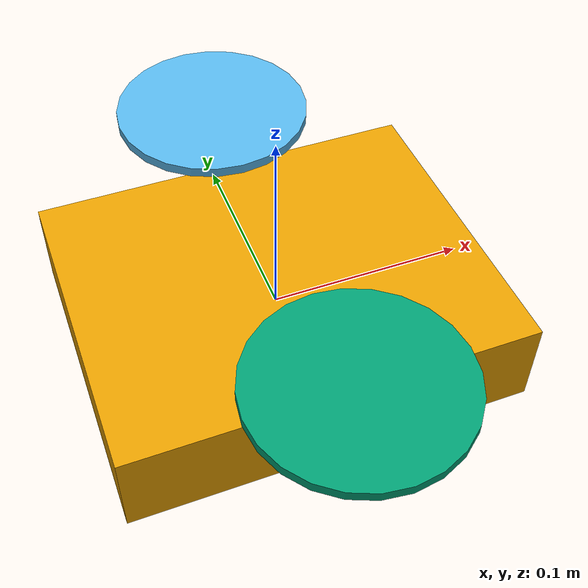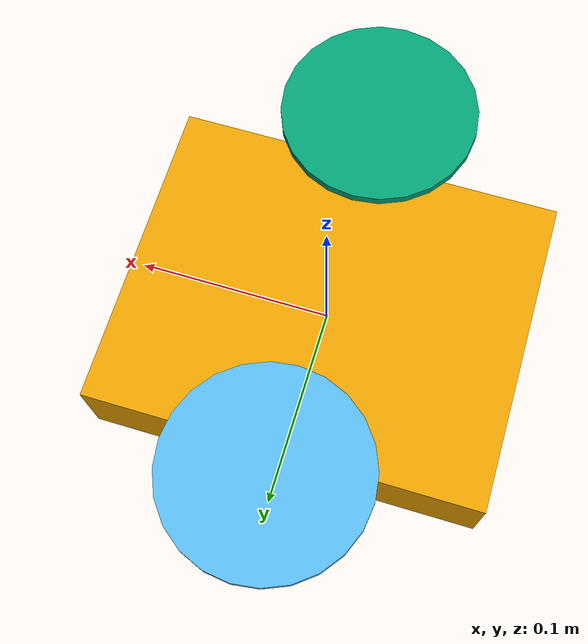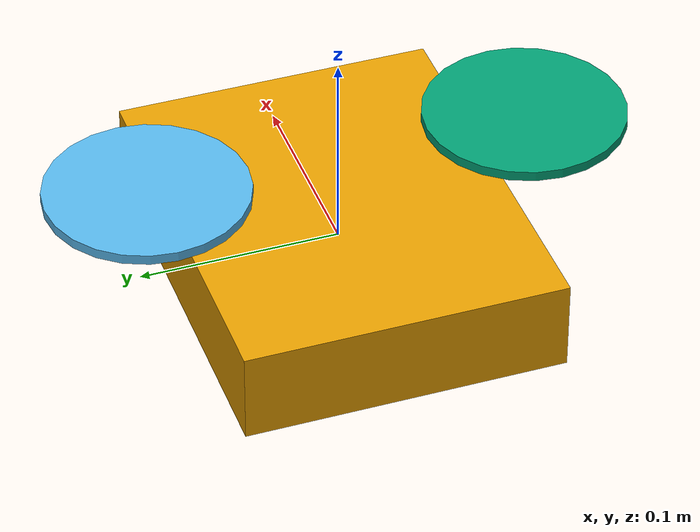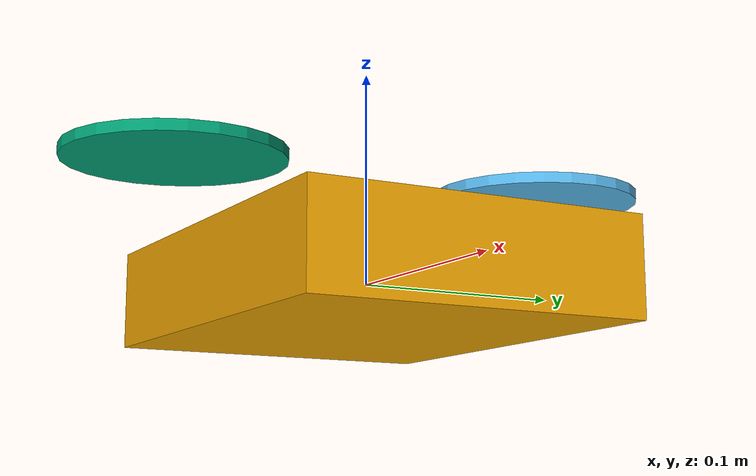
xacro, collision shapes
<?xml version="1.0"?>
<robot name="puzzlebot" xmlns:xacro="http://ros.org/wiki/xacro">

  <!-- Base Link -->
  <link name="base_link">
    <visual>
      <origin xyz="0 0 0.05" rpy="0 0 0"/>
      <geometry>
        <mesh filename="package://msr_simulation/meshes/chassis1.dae" scale="1 1 1"/>
      </geometry>
    </visual>
    <collision>
      <geometry>
        <box size="0.2 0.16 0.046"/>
      </geometry>
    </collision>
    <inertial>
      <mass value="0.8"/>
      <origin xyz="-0.05 0 0.05" rpy="0 0 0"/>
      <inertia ixx="0.004" ixy="0" ixz="0" iyy="0.004" iyz="0" izz="0.004"/>
    </inertial>
  </link>

  <!-- Left Wheel -->
  <link name="left_wheel">
    <visual>
      <geometry>
        <mesh filename="package://msr_simulation/meshes/wheel.dae" scale="1 1 1"/>
      </geometry>
    </visual>
    <collision>
      <geometry>
        <cylinder radius="0.05" length="0.005"/>
      </geometry>
    </collision>
    <inertial>
      <mass value="0.05"/>
      <inertia ixx="0.002" ixy="0" ixz="0" iyy="0.002" iyz="0" izz="0.002"/>
    </inertial>
  </link>

  <joint name="left_wheel_joint" type="continuous">
    <parent link="base_link"/>
    <child link="left_wheel"/>
    <origin xyz="0 0.095 0.05" rpy="0 0 0"/>
    <axis xyz="0 1 0"/>
  </joint>

  <!-- Right Wheel -->
  <link name="right_wheel">
    <visual>
      <geometry>
        <mesh filename="package://msr_simulation/meshes/wheel.dae" scale="1 1 1"/>
      </geometry>
    </visual>
    <collision>
      <geometry>
        <cylinder radius="0.05" length="0.005"/>
      </geometry>
    </collision>
    <inertial>
      <mass value="0.05"/>
      <inertia ixx="0.002" ixy="0" ixz="0" iyy="0.002" iyz="0" izz="0.002"/>
    </inertial>
  </link>

  <joint name="right_wheel_joint" type="continuous">
    <parent link="base_link"/>
    <child link="right_wheel"/>
    <origin xyz="0 -0.095 0.05" rpy="0 0 3.1415"/>
    <axis xyz="0 1 0"/>
  </joint>

</robot>
